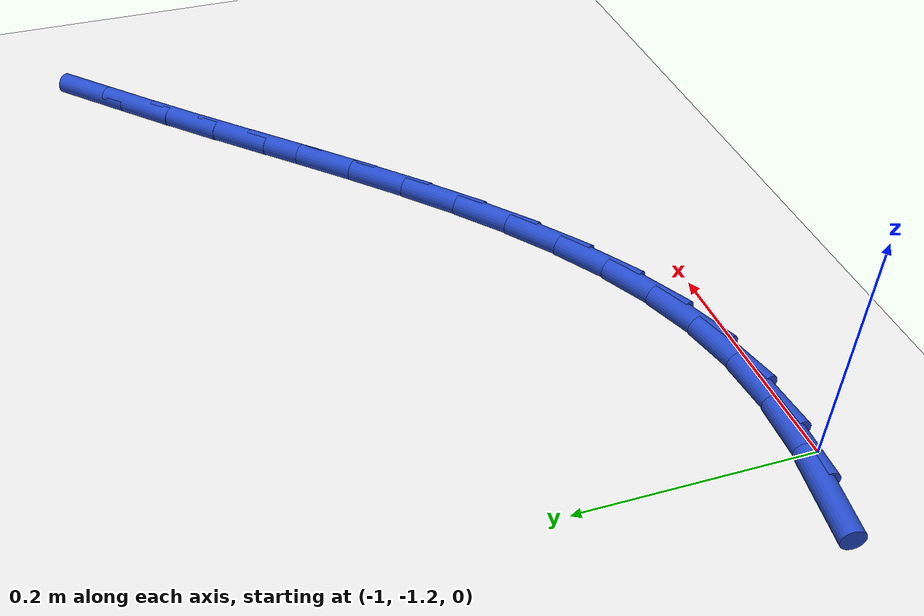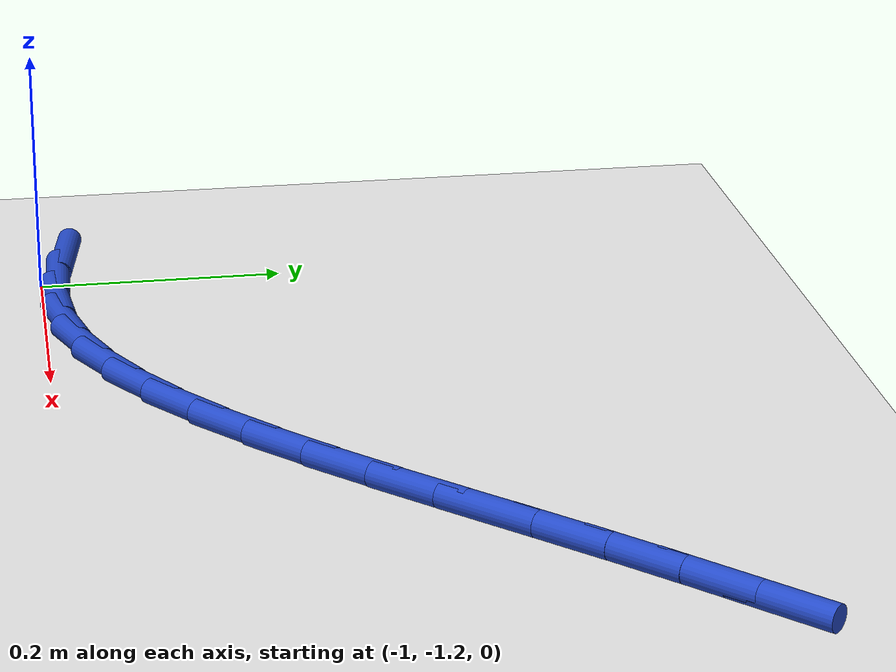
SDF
<sdf version="1.6">
 <world name="default">
  <model name="ground_plane">
   <static>1</static>
   <link name="link">
    <collision name="collision">
     <geometry><plane><normal>0 0 1</normal><size>100 100</size></plane></geometry>
     <surface><friction><ode><mu>100</mu><mu2>50</mu2></ode></friction></surface>
    </collision>
    <visual name="visual">
     <cast_shadows>0</cast_shadows>
     <geometry><plane><normal>0 0 1</normal><size>100 100</size></plane></geometry>
     <material>
      <script><uri>file://media/materials/scripts/gazebo.material</uri><name>Gazebo/WhiteGlow</name></script>
     </material>
    </visual>
   </link>
  </model>
  <model name="line">
   <link name="link_98">
    <pose>-1.0434638256200977 -1.178115593045009 0.01 0 1.57 -0.15261762885515334</pose>
    <collision name="collision">
     <geometry><cylinder><radius>0.01</radius><length>0.08</length></cylinder></geometry>
    </collision>
    <visual name="visual">
     <material>
      <script><name>Gazebo/Blue</name><uri>file://media/materials/scripts/gazebo.material</uri></script>
     </material>
     <geometry><cylinder><radius>0.01</radius><length>0.08</length></cylinder></geometry>
    </visual>
   </link>
   <link name="link_99">
    <pose>-0.9939494754530385 -1.1857315786542357 0.01 0 1.57 -0.04181196279030272</pose>
    <collision name="collision">
     <geometry><cylinder><radius>0.01</radius><length>0.08</length></cylinder></geometry>
    </collision>
    <visual name="visual">
     <material>
      <script><name>Gazebo/Blue</name><uri>file://media/materials/scripts/gazebo.material</uri></script>
     </material>
     <geometry><cylinder><radius>0.01</radius><length>0.08</length></cylinder></geometry>
    </visual>
   </link>
   <link name="link_100">
    <pose>-0.9453920435783678 -1.1877630441568772 0.01 0 1.57 0.08956499109347181</pose>
    <collision name="collision">
     <geometry><cylinder><radius>0.01</radius><length>0.08</length></cylinder></geometry>
    </collision>
    <visual name="visual">
     <material>
      <script><name>Gazebo/Blue</name><uri>file://media/materials/scripts/gazebo.material</uri></script>
     </material>
     <geometry><cylinder><radius>0.01</radius><length>0.08</length></cylinder></geometry>
    </visual>
   </link>
   <link name="link_101">
    <pose>-0.8979491183715828 -1.1835024201368276 0.01 0 1.57 0.2374498910610638</pose>
    <collision name="collision">
     <geometry><cylinder><radius>0.01</radius><length>0.08</length></cylinder></geometry>
    </collision>
    <visual name="visual">
     <material>
      <script><name>Gazebo/Blue</name><uri>file://media/materials/scripts/gazebo.material</uri></script>
     </material>
     <geometry><cylinder><radius>0.01</radius><length>0.08</length></cylinder></geometry>
    </visual>
   </link>
   <link name="link_102">
    <pose>-0.8517624384669501 -1.1723245250698908 0.01 0 1.57 0.377676903334963</pose>
    <collision name="collision">
     <geometry><cylinder><radius>0.01</radius><length>0.08</length></cylinder></geometry>
    </collision>
    <visual name="visual">
     <material>
      <script><name>Gazebo/Blue</name><uri>file://media/materials/scripts/gazebo.material</uri></script>
     </material>
     <geometry><cylinder><radius>0.01</radius><length>0.08</length></cylinder></geometry>
    </visual>
   </link>
   <link name="link_103">
    <pose>-0.8068036360181121 -1.154488400974465 0.01 0 1.57 0.4953464875809593</pose>
    <collision name="collision">
     <geometry><cylinder><radius>0.01</radius><length>0.08</length></cylinder></geometry>
    </collision>
    <visual name="visual">
     <material>
      <script><name>Gazebo/Blue</name><uri>file://media/materials/scripts/gazebo.material</uri></script>
     </material>
     <geometry><cylinder><radius>0.01</radius><length>0.08</length></cylinder></geometry>
    </visual>
   </link>
   <link name="link_104">
    <pose>-0.7629409612203407 -1.1307904754002363 0.01 0 1.57 0.5905139734115309</pose>
    <collision name="collision">
     <geometry><cylinder><radius>0.01</radius><length>0.08</length></cylinder></geometry>
    </collision>
    <visual name="visual">
     <material>
      <script><name>Gazebo/Blue</name><uri>file://media/materials/scripts/gazebo.material</uri></script>
     </material>
     <geometry><cylinder><radius>0.01</radius><length>0.08</length></cylinder></geometry>
    </visual>
   </link>
   <link name="link_105">
    <pose>-0.7200412058503031 -1.1020347568430218 0.01 0 1.57 0.665299714170829</pose>
    <collision name="collision">
     <geometry><cylinder><radius>0.01</radius><length>0.08</length></cylinder></geometry>
    </collision>
    <visual name="visual">
     <material>
      <script><name>Gazebo/Blue</name><uri>file://media/materials/scripts/gazebo.material</uri></script>
     </material>
     <geometry><cylinder><radius>0.01</radius><length>0.08</length></cylinder></geometry>
    </visual>
   </link>
   <link name="link_106">
    <pose>-0.6779711616846665 -1.0690252537986389 0.01 0 1.57 0.7223431759919055</pose>
    <collision name="collision">
     <geometry><cylinder><radius>0.01</radius><length>0.08</length></cylinder></geometry>
    </collision>
    <visual name="visual">
     <material>
      <script><name>Gazebo/Blue</name><uri>file://media/materials/scripts/gazebo.material</uri></script>
     </material>
     <geometry><cylinder><radius>0.01</radius><length>0.08</length></cylinder></geometry>
    </visual>
   </link>
   <link name="link_107">
    <pose>-0.6365976205000977 -1.0325659747629041 0.01 0 1.57 0.7640638090492047</pose>
    <collision name="collision">
     <geometry><cylinder><radius>0.01</radius><length>0.08</length></cylinder></geometry>
    </collision>
    <visual name="visual">
     <material>
      <script><name>Gazebo/Blue</name><uri>file://media/materials/scripts/gazebo.material</uri></script>
     </material>
     <geometry><cylinder><radius>0.01</radius><length>0.08</length></cylinder></geometry>
    </visual>
   </link>
   <link name="link_108">
    <pose>-0.5957873740732651 -0.9934609282316356 0.01 0 1.57 0.7923655507381931</pose>
    <collision name="collision">
     <geometry><cylinder><radius>0.01</radius><length>0.08</length></cylinder></geometry>
    </collision>
    <visual name="visual">
     <material>
      <script><name>Gazebo/Blue</name><uri>file://media/materials/scripts/gazebo.material</uri></script>
     </material>
     <geometry><cylinder><radius>0.01</radius><length>0.08</length></cylinder></geometry>
    </visual>
   </link>
   <link name="link_109">
    <pose>-0.5554072141808352 -0.9525141227006498 0.01 0 1.57 0.8085611279740608</pose>
    <collision name="collision">
     <geometry><cylinder><radius>0.01</radius><length>0.08</length></cylinder></geometry>
    </collision>
    <visual name="visual">
     <material>
      <script><name>Gazebo/Blue</name><uri>file://media/materials/scripts/gazebo.material</uri></script>
     </material>
     <geometry><cylinder><radius>0.01</radius><length>0.08</length></cylinder></geometry>
    </visual>
   </link>
   <link name="link_110">
    <pose>-0.5153239325994745 -0.9105295666657632 0.01 0 1.57 0.8133765564970378</pose>
    <collision name="collision">
     <geometry><cylinder><radius>0.01</radius><length>0.08</length></cylinder></geometry>
    </collision>
    <visual name="visual">
     <material>
      <script><name>Gazebo/Blue</name><uri>file://media/materials/scripts/gazebo.material</uri></script>
     </material>
     <geometry><cylinder><radius>0.01</radius><length>0.08</length></cylinder></geometry>
    </visual>
   </link>
   <link name="link_111">
    <pose>-0.47540432110585173 -0.8683112686227944 0.01 0 1.57 0.8069663505220696</pose>
    <collision name="collision">
     <geometry><cylinder><radius>0.01</radius><length>0.08</length></cylinder></geometry>
    </collision>
    <visual name="visual">
     <material>
      <script><name>Gazebo/Blue</name><uri>file://media/materials/scripts/gazebo.material</uri></script>
     </material>
     <geometry><cylinder><radius>0.01</radius><length>0.08</length></cylinder></geometry>
    </visual>
   </link>
   <link name="link_112">
    <pose>-0.43551517147663327 -0.8266632370675597 0.01 0 1.57 0.7916030079582064</pose>
    <collision name="collision">
     <geometry><cylinder><radius>0.01</radius><length>0.08</length></cylinder></geometry>
    </collision>
    <visual name="visual">
     <material>
      <script><name>Gazebo/Blue</name><uri>file://media/materials/scripts/gazebo.material</uri></script>
     </material>
     <geometry><cylinder><radius>0.01</radius><length>0.08</length></cylinder></geometry>
    </visual>
   </link>
   <link name="link_113">
    <pose>-0.39558705262881283 -0.7862365225704518 0.01 0 1.57 0.7810189140200782</pose>
    <collision name="collision">
     <geometry><cylinder><radius>0.01</radius><length>0.08</length></cylinder></geometry>
    </collision>
    <visual name="visual">
     <material>
      <script><name>Gazebo/Blue</name><uri>file://media/materials/scripts/gazebo.material</uri></script>
     </material>
     <geometry><cylinder><radius>0.01</radius><length>0.08</length></cylinder></geometry>
    </visual>
   </link>
   <link name="link_114">
    <pose>-0.3558848029075472 -0.7468804909915856 0.01 0 1.57 0.7801968588268343</pose>
    <collision name="collision">
     <geometry><cylinder><radius>0.01</radius><length>0.08</length></cylinder></geometry>
    </collision>
    <visual name="visual">
     <material>
      <script><name>Gazebo/Blue</name><uri>file://media/materials/scripts/gazebo.material</uri></script>
     </material>
     <geometry><cylinder><radius>0.01</radius><length>0.08</length></cylinder></geometry>
    </visual>
   </link>
  </model>
 </world>
</sdf>
